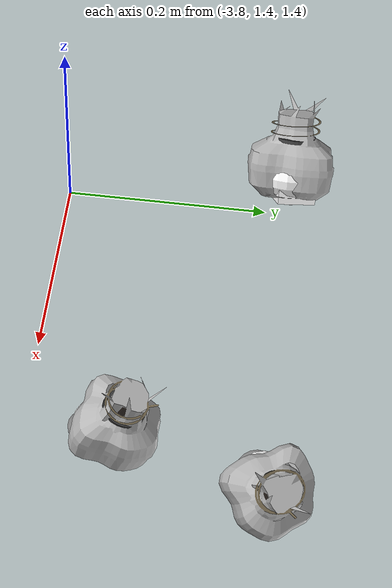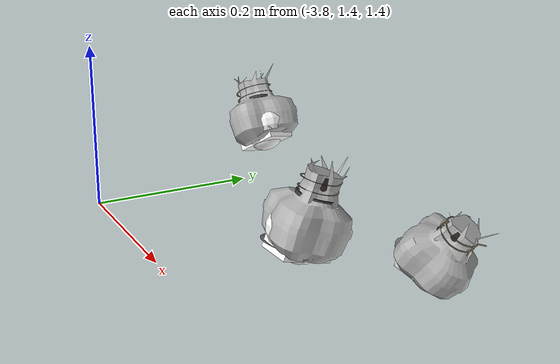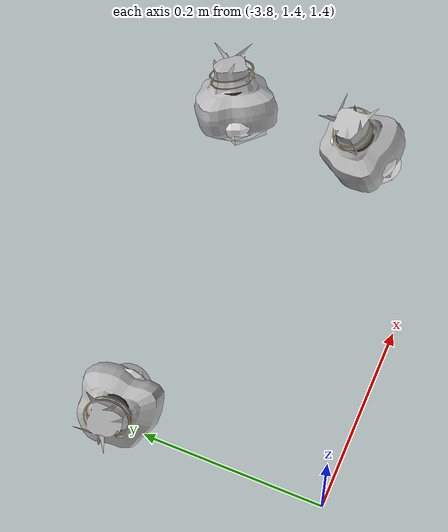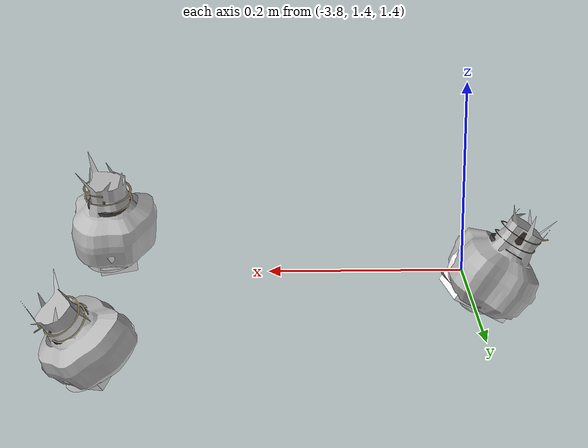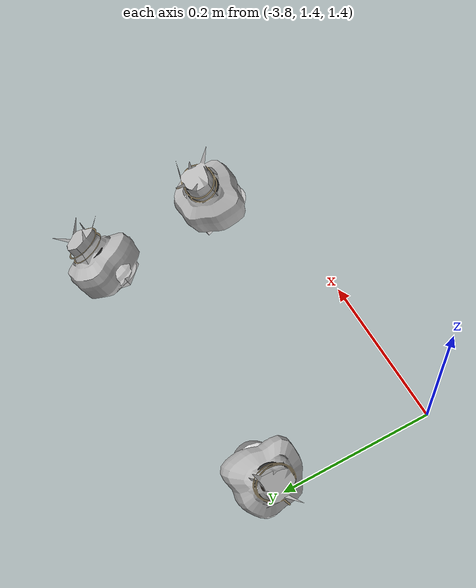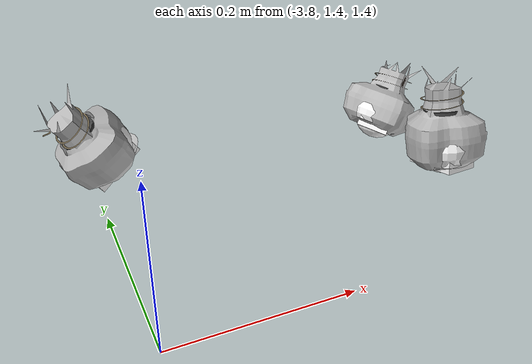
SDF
<sdf version="1.11">
 <world name="peach_orchard">
  <model name="ground">
   <static>true</static>
   <link name="link">
    <visual name="soil">
     <geometry><plane><normal>0 0 1</normal><size>32 22</size></plane></geometry>
     <material>
      <ambient>1 1 1 1</ambient>
      <diffuse>1 1 1 1</diffuse>
      <specular>0.1 0.1 0.1 1</specular>
      <pbr>
       <metal>
        <albedo_map>textures/soil_albedo.png</albedo_map>
        <normal_map type="tangent">textures/soil_normal.png</normal_map>
        <roughness>0.95</roughness>
        <metalness>0</metalness>
       </metal>
      </pbr>
     </material>
    </visual>
    <collision name="c_soil">
     <geometry><plane><normal>0 0 1</normal><size>32 22</size></plane></geometry>
    </collision>
   </link>
  </model>
  <model name="peach_tree_r1_t4_01">
   <pose>-3.78 1.62568 1.45 0 0.577174 3.11252</pose>
   <static>true</static>
   <link name="bag">
    <visual name="bag_mesh">
     <pose>0 0 0.0431553 0 0 0</pose>
     <geometry>
      <mesh><uri>model://peach_sim/meshes/bagged_peach.glb</uri><scale>1.02273 1.2639 0.980803</scale></mesh>
     </geometry>
    </visual>
    <visual name="body">
     <pose>0 0 0.0251553 0 0 0</pose>
     <geometry><ellipsoid><radii>0.0383523 0.0328614 0.0271678</radii></ellipsoid></geometry>
     <material>
      <ambient>1 1 1 1</ambient>
      <diffuse>1 1 1 1</diffuse>
      <specular>0.1 0.1 0.1 1</specular>
      <pbr>
       <metal>
        <albedo_map>textures/paper_bag_albedo.png</albedo_map>
        <normal_map type="tangent">textures/paper_bag_normal.png</normal_map>
        <roughness>0.72</roughness>
        <metalness>0</metalness>
       </metal>
      </pbr>
     </material>
    </visual>
    <visual name="bottom_fold">
     <pose>0 0 0.012 0 0 0.35</pose>
     <geometry><box><size>0.0594461 0.0377906 0.022</size></box></geometry>
     <material>
      <ambient>1 1 1 1</ambient>
      <diffuse>1 1 1 1</diffuse>
      <specular>0.1 0.1 0.1 1</specular>
      <pbr>
       <metal>
        <albedo_map>textures/paper_bag_albedo.png</albedo_map>
        <normal_map type="tangent">textures/paper_bag_normal.png</normal_map>
        <roughness>0.8</roughness>
        <metalness>0</metalness>
       </metal>
      </pbr>
     </material>
    </visual>
    <visual name="fruit">
     <pose>0 0 0.019068 0 0 0</pose>
     <geometry><sphere><radius>0.0260707</radius></sphere></geometry>
     <material>
      <ambient>1 1 1 1</ambient>
      <diffuse>1 1 1 1</diffuse>
      <specular>0.1 0.1 0.1 1</specular>
      <pbr>
       <metal>
        <albedo_map>textures/fruit_skin_albedo.png</albedo_map>
        <normal_map type="tangent">textures/fruit_skin_normal.png</normal_map>
        <roughness>0.55</roughness>
        <metalness>0</metalness>
       </metal>
      </pbr>
     </material>
    </visual>
    <visual name="neck">
     <pose>0 0 0.0593107 0 0 0</pose>
     <geometry><cylinder><radius>0.013</radius><length>0.018</length></cylinder></geometry>
     <material>
      <ambient>1 1 1 1</ambient>
      <diffuse>1 1 1 1</diffuse>
      <specular>0.1 0.1 0.1 1</specular>
      <pbr>
       <metal>
        <albedo_map>textures/paper_bag_albedo.png</albedo_map>
        <normal_map type="tangent">textures/paper_bag_normal.png</normal_map>
        <roughness>0.75</roughness>
        <metalness>0</metalness>
       </metal>
      </pbr>
     </material>
    </visual>
    <visual name="gather">
     <pose>0 0 0.0403107 0 0 0</pose>
     <geometry><cylinder><radius>0.019</radius><length>0.02</length></cylinder></geometry>
     <material>
      <ambient>1 1 1 1</ambient>
      <diffuse>1 1 1 1</diffuse>
      <specular>0.1 0.1 0.1 1</specular>
      <pbr>
       <metal>
        <albedo_map>textures/paper_bag_albedo.png</albedo_map>
        <normal_map type="tangent">textures/paper_bag_normal.png</normal_map>
        <roughness>0.8</roughness>
        <metalness>0</metalness>
       </metal>
      </pbr>
     </material>
    </visual>
    <visual name="inner_paper">
     <pose>0 0 0.0643107 0 0 0</pose>
     <geometry><cylinder><radius>0.01</radius><length>0.008</length></cylinder></geometry>
     <material>
      <ambient>0.180392 0.14902 0.133333 1</ambient>
      <diffuse>0.180392 0.14902 0.133333 1</diffuse>
      <specular>0.1 0.1 0.1 1</specular>
     </material>
    </visual>
    <visual name="wire_0">
     <pose>0 0 0.0543107 0 0 0</pose>
     <geometry><cylinder><radius>0.0205</radius><length>0.0035</length></cylinder></geometry>
     <material>
      <ambient>0.25 0.25 0.25 1</ambient>
      <diffuse>0.25 0.25 0.25 1</diffuse>
      <specular>0.1 0.1 0.1 1</specular>
     </material>
    </visual>
    <visual name="wire_1">
     <pose>0 0 0.0613107 0 0 0</pose>
     <geometry><cylinder><radius>0.0205</radius><length>0.0035</length></cylinder></geometry>
     <material>
      <ambient>0.25 0.25 0.25 1</ambient>
      <diffuse>0.25 0.25 0.25 1</diffuse>
      <specular>0.1 0.1 0.1 1</specular>
     </material>
    </visual>
    <visual name="wire_tail">
     <pose>0.01 0 0.0623107 0 0.521618 0</pose>
     <geometry><cylinder><radius>0.0012</radius><length>0.026</length></cylinder></geometry>
     <material>
      <ambient>0.25 0.25 0.25 1</ambient>
      <diffuse>0.25 0.25 0.25 1</diffuse>
      <specular>0.1 0.1 0.1 1</specular>
     </material>
    </visual>
    <collision name="c_body">
     <pose>0 0 0.0251553 0 0 0</pose>
     <geometry><cylinder><radius>0.0383523</radius><length>0.0503107</length></cylinder></geometry>
    </collision>
   </link>
  </model>
  <model name="peach_tree_r1_t4_07">
   <pose>-3.45 1.63836 1.39955 0 0.677899 0.545032</pose>
   <static>true</static>
   <link name="bag">
    <visual name="bag_mesh">
     <pose>0 0 0.0395166 0 0 0</pose>
     <geometry>
      <mesh><uri>model://peach_sim/meshes/bagged_peach.glb</uri><scale>1.0581 1.25767 0.898104</scale></mesh>
     </geometry>
    </visual>
    <visual name="body">
     <pose>0 0 0.0215166 0 0 0</pose>
     <geometry><ellipsoid><radii>0.0396786 0.0326994 0.0232379</radii></ellipsoid></geometry>
     <material>
      <ambient>1 1 1 1</ambient>
      <diffuse>1 1 1 1</diffuse>
      <specular>0.1 0.1 0.1 1</specular>
      <pbr>
       <metal>
        <albedo_map>textures/paper_bag_albedo.png</albedo_map>
        <normal_map type="tangent">textures/paper_bag_normal.png</normal_map>
        <roughness>0.72</roughness>
        <metalness>0</metalness>
       </metal>
      </pbr>
     </material>
    </visual>
    <visual name="bottom_fold">
     <pose>0 0 0.012 0 0 0.35</pose>
     <geometry><box><size>0.0615018 0.0376044 0.022</size></box></geometry>
     <material>
      <ambient>1 1 1 1</ambient>
      <diffuse>1 1 1 1</diffuse>
      <specular>0.1 0.1 0.1 1</specular>
      <pbr>
       <metal>
        <albedo_map>textures/paper_bag_albedo.png</albedo_map>
        <normal_map type="tangent">textures/paper_bag_normal.png</normal_map>
        <roughness>0.8</roughness>
        <metalness>0</metalness>
       </metal>
      </pbr>
     </material>
    </visual>
    <visual name="fruit">
     <pose>0 0 0.0212282 0 0 0</pose>
     <geometry><sphere><radius>0.0283173</radius></sphere></geometry>
     <material>
      <ambient>1 1 1 1</ambient>
      <diffuse>1 1 1 1</diffuse>
      <specular>0.1 0.1 0.1 1</specular>
      <pbr>
       <metal>
        <albedo_map>textures/fruit_skin_albedo.png</albedo_map>
        <normal_map type="tangent">textures/fruit_skin_normal.png</normal_map>
        <roughness>0.55</roughness>
        <metalness>0</metalness>
       </metal>
      </pbr>
     </material>
    </visual>
    <visual name="neck">
     <pose>0 0 0.0520332 0 0 0</pose>
     <geometry><cylinder><radius>0.013</radius><length>0.018</length></cylinder></geometry>
     <material>
      <ambient>1 1 1 1</ambient>
      <diffuse>1 1 1 1</diffuse>
      <specular>0.1 0.1 0.1 1</specular>
      <pbr>
       <metal>
        <albedo_map>textures/paper_bag_albedo.png</albedo_map>
        <normal_map type="tangent">textures/paper_bag_normal.png</normal_map>
        <roughness>0.75</roughness>
        <metalness>0</metalness>
       </metal>
      </pbr>
     </material>
    </visual>
    <visual name="gather">
     <pose>0 0 0.0330332 0 0 0</pose>
     <geometry><cylinder><radius>0.019</radius><length>0.02</length></cylinder></geometry>
     <material>
      <ambient>1 1 1 1</ambient>
      <diffuse>1 1 1 1</diffuse>
      <specular>0.1 0.1 0.1 1</specular>
      <pbr>
       <metal>
        <albedo_map>textures/paper_bag_albedo.png</albedo_map>
        <normal_map type="tangent">textures/paper_bag_normal.png</normal_map>
        <roughness>0.8</roughness>
        <metalness>0</metalness>
       </metal>
      </pbr>
     </material>
    </visual>
    <visual name="inner_paper">
     <pose>0 0 0.0570332 0 0 0</pose>
     <geometry><cylinder><radius>0.01</radius><length>0.008</length></cylinder></geometry>
     <material>
      <ambient>0.180392 0.14902 0.133333 1</ambient>
      <diffuse>0.180392 0.14902 0.133333 1</diffuse>
      <specular>0.1 0.1 0.1 1</specular>
     </material>
    </visual>
    <visual name="wire_0">
     <pose>0 0 0.0470332 0 0 0</pose>
     <geometry><cylinder><radius>0.0205</radius><length>0.0035</length></cylinder></geometry>
     <material>
      <ambient>0.25 0.25 0.25 1</ambient>
      <diffuse>0.25 0.25 0.25 1</diffuse>
      <specular>0.1 0.1 0.1 1</specular>
     </material>
    </visual>
    <visual name="wire_1">
     <pose>0 0 0.0540332 0 0 0</pose>
     <geometry><cylinder><radius>0.0205</radius><length>0.0035</length></cylinder></geometry>
     <material>
      <ambient>0.25 0.25 0.25 1</ambient>
      <diffuse>0.25 0.25 0.25 1</diffuse>
      <specular>0.1 0.1 0.1 1</specular>
     </material>
    </visual>
    <visual name="wire_tail">
     <pose>0.01 0 0.0550332 0 0.521618 0</pose>
     <geometry><cylinder><radius>0.0012</radius><length>0.026</length></cylinder></geometry>
     <material>
      <ambient>0.25 0.25 0.25 1</ambient>
      <diffuse>0.25 0.25 0.25 1</diffuse>
      <specular>0.1 0.1 0.1 1</specular>
     </material>
    </visual>
    <collision name="c_body">
     <pose>0 0 0.0215166 0 0 0</pose>
     <geometry><cylinder><radius>0.0396786</radius><length>0.0430332</length></cylinder></geometry>
    </collision>
   </link>
  </model>
  <model name="peach_tree_r1_t4_08">
   <pose>-3.45 1.48969 1.45 0 0.317892 1.38831</pose>
   <static>true</static>
   <link name="bag">
    <visual name="bag_mesh">
     <pose>0 0 0.0440519 0 0 0</pose>
     <geometry>
      <mesh><uri>model://peach_sim/meshes/bagged_peach.glb</uri><scale>1.04403 1.18804 1.00118</scale></mesh>
     </geometry>
    </visual>
    <visual name="body">
     <pose>0 0 0.0260519 0 0 0</pose>
     <geometry><ellipsoid><radii>0.039151 0.0308891 0.0281361</radii></ellipsoid></geometry>
     <material>
      <ambient>1 1 1 1</ambient>
      <diffuse>1 1 1 1</diffuse>
      <specular>0.1 0.1 0.1 1</specular>
      <pbr>
       <metal>
        <albedo_map>textures/paper_bag_albedo.png</albedo_map>
        <normal_map type="tangent">textures/paper_bag_normal.png</normal_map>
        <roughness>0.72</roughness>
        <metalness>0</metalness>
       </metal>
      </pbr>
     </material>
    </visual>
    <visual name="bottom_fold">
     <pose>0 0 0.012 0 0 0.35</pose>
     <geometry><box><size>0.0606841 0.0355225 0.022</size></box></geometry>
     <material>
      <ambient>1 1 1 1</ambient>
      <diffuse>1 1 1 1</diffuse>
      <specular>0.1 0.1 0.1 1</specular>
      <pbr>
       <metal>
        <albedo_map>textures/paper_bag_albedo.png</albedo_map>
        <normal_map type="tangent">textures/paper_bag_normal.png</normal_map>
        <roughness>0.8</roughness>
        <metalness>0</metalness>
       </metal>
      </pbr>
     </material>
    </visual>
    <visual name="fruit">
     <pose>0 0 0.0190354 0 0 0</pose>
     <geometry><sphere><radius>0.0260368</radius></sphere></geometry>
     <material>
      <ambient>1 1 1 1</ambient>
      <diffuse>1 1 1 1</diffuse>
      <specular>0.1 0.1 0.1 1</specular>
      <pbr>
       <metal>
        <albedo_map>textures/fruit_skin_albedo.png</albedo_map>
        <normal_map type="tangent">textures/fruit_skin_normal.png</normal_map>
        <roughness>0.55</roughness>
        <metalness>0</metalness>
       </metal>
      </pbr>
     </material>
    </visual>
    <visual name="neck">
     <pose>0 0 0.0611038 0 0 0</pose>
     <geometry><cylinder><radius>0.013</radius><length>0.018</length></cylinder></geometry>
     <material>
      <ambient>1 1 1 1</ambient>
      <diffuse>1 1 1 1</diffuse>
      <specular>0.1 0.1 0.1 1</specular>
      <pbr>
       <metal>
        <albedo_map>textures/paper_bag_albedo.png</albedo_map>
        <normal_map type="tangent">textures/paper_bag_normal.png</normal_map>
        <roughness>0.75</roughness>
        <metalness>0</metalness>
       </metal>
      </pbr>
     </material>
    </visual>
    <visual name="gather">
     <pose>0 0 0.0421038 0 0 0</pose>
     <geometry><cylinder><radius>0.019</radius><length>0.02</length></cylinder></geometry>
     <material>
      <ambient>1 1 1 1</ambient>
      <diffuse>1 1 1 1</diffuse>
      <specular>0.1 0.1 0.1 1</specular>
      <pbr>
       <metal>
        <albedo_map>textures/paper_bag_albedo.png</albedo_map>
        <normal_map type="tangent">textures/paper_bag_normal.png</normal_map>
        <roughness>0.8</roughness>
        <metalness>0</metalness>
       </metal>
      </pbr>
     </material>
    </visual>
    <visual name="inner_paper">
     <pose>0 0 0.0661038 0 0 0</pose>
     <geometry><cylinder><radius>0.01</radius><length>0.008</length></cylinder></geometry>
     <material>
      <ambient>0.180392 0.14902 0.133333 1</ambient>
      <diffuse>0.180392 0.14902 0.133333 1</diffuse>
      <specular>0.1 0.1 0.1 1</specular>
     </material>
    </visual>
    <visual name="wire_0">
     <pose>0 0 0.0561038 0 0 0</pose>
     <geometry><cylinder><radius>0.0205</radius><length>0.0035</length></cylinder></geometry>
     <material>
      <ambient>0.25 0.25 0.25 1</ambient>
      <diffuse>0.25 0.25 0.25 1</diffuse>
      <specular>0.1 0.1 0.1 1</specular>
     </material>
    </visual>
    <visual name="wire_1">
     <pose>0 0 0.0631038 0 0 0</pose>
     <geometry><cylinder><radius>0.0205</radius><length>0.0035</length></cylinder></geometry>
     <material>
      <ambient>0.25 0.25 0.25 1</ambient>
      <diffuse>0.25 0.25 0.25 1</diffuse>
      <specular>0.1 0.1 0.1 1</specular>
     </material>
    </visual>
    <visual name="wire_tail">
     <pose>0.01 0 0.0641038 0 0.521618 0</pose>
     <geometry><cylinder><radius>0.0012</radius><length>0.026</length></cylinder></geometry>
     <material>
      <ambient>0.25 0.25 0.25 1</ambient>
      <diffuse>0.25 0.25 0.25 1</diffuse>
      <specular>0.1 0.1 0.1 1</specular>
     </material>
    </visual>
    <collision name="c_body">
     <pose>0 0 0.0260519 0 0 0</pose>
     <geometry><cylinder><radius>0.039151</radius><length>0.0521038</length></cylinder></geometry>
    </collision>
   </link>
  </model>
 </world>
</sdf>
